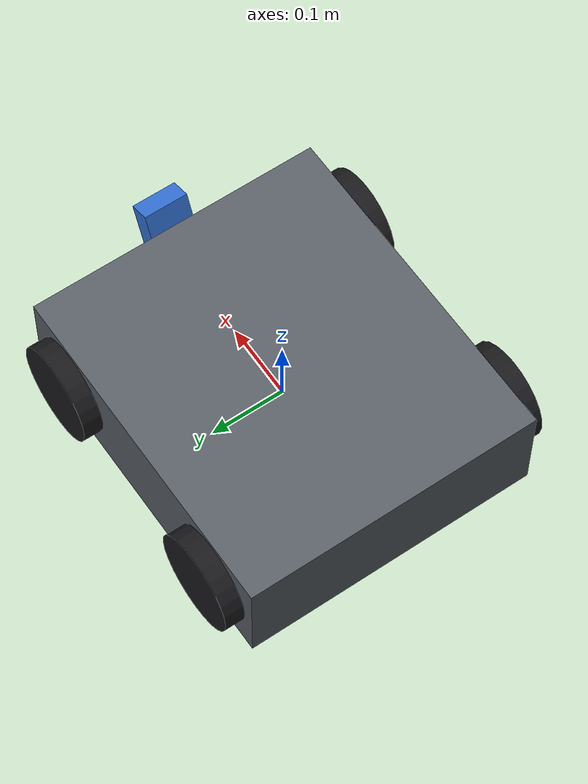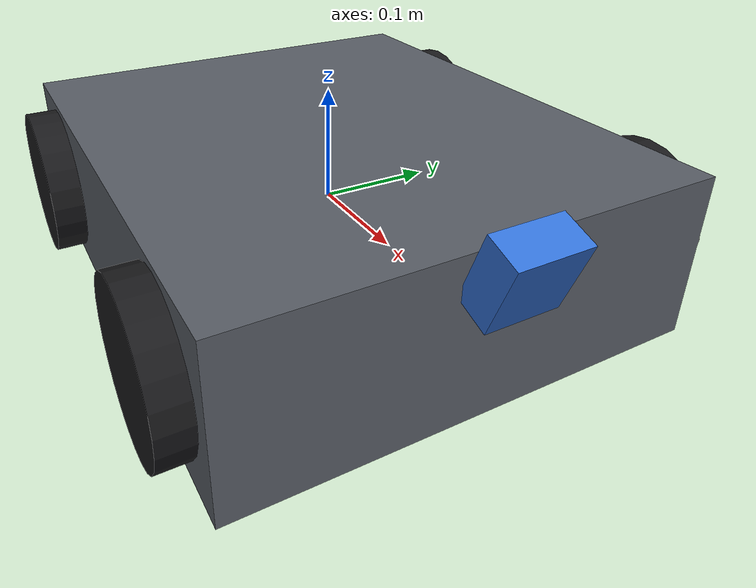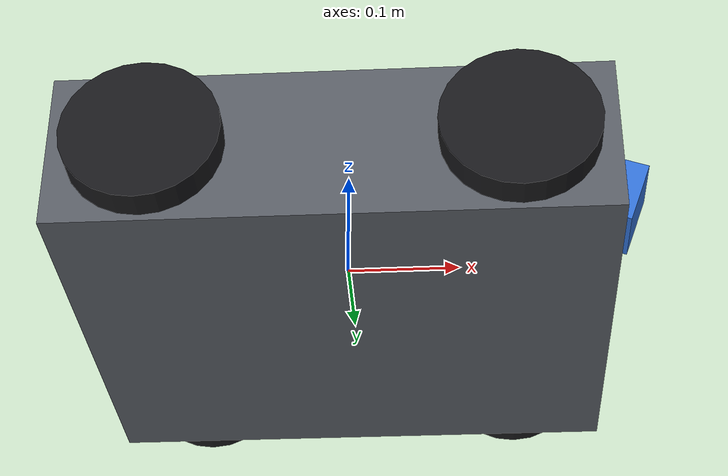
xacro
<?xml version="1.0"?>
<robot xmlns:xacro="http://www.ros.org/wiki/xacro" name="hwb_robot">

  <xacro:arg name="can_interface" default="can0"/>
  <xacro:arg name="use_ros2_control" default="false"/>

  <!-- ================= 全局参数 ================= -->
  <xacro:property name="wheel_radius"  value="0.065"/>
  <xacro:property name="wheel_width"   value="0.032"/>
  <xacro:property name="track_width"   value="0.42"/>
  <xacro:property name="wheel_base"    value="0.30"/>
  <xacro:property name="body_length"   value="0.46"/>
  <xacro:property name="body_width"    value="0.40"/>
  <xacro:property name="body_height"   value="0.14"/>
  <xacro:property name="body_z"        value="0.09"/>
  <xacro:property name="wheel_mass"    value="0.42"/>
  <xacro:property name="body_mass"     value="9.8"/>

  <!-- 惯性矩阵 -->
  <xacro:macro name="box_inertia" params="m x y z">
    <inertial>
      <mass value="${m}"/>
      <inertia ixx="${m*(y*y+z*z)/12.0}" ixy="0"
               ixz="0" iyy="${m*(x*x+z*z)/12.0}"
               iyz="0" izz="${m*(x*x+y*y)/12.0}"/>
    </inertial>
  </xacro:macro>

  <xacro:macro name="cyl_inertia" params="m r h">
    <inertial>
      <mass value="${m}"/>
      <inertia ixx="${m*(3.0*r*r+h*h)/12.0}" ixy="0" ixz="0"
               iyy="${m*(3.0*r*r+h*h)/12.0}" iyz="0"
               izz="${m*r*r/2.0}"/>
    </inertial>
  </xacro:macro>

  <!-- ================= 材质 ================= -->
  <material name="body_grey"><color rgba="0.35 0.37 0.40 1.0"/></material>
  <material name="wheel_black"><color rgba="0.10 0.10 0.11 1.0"/></material>
  <material name="cam_blue"><color rgba="0.20 0.45 0.85 1.0"/></material>
  <material name="pump_amber"><color rgba="0.90 0.62 0.10 1.0"/></material>

  <!-- ================= base_link ================= -->
  <link name="base_link">
    <visual>
      <origin xyz="0 0 0" rpy="0 0 0"/>
      <geometry><box size="${body_length} ${body_width} ${body_height}"/></geometry>
      <material name="body_grey"/>
    </visual>
    <collision>
      <origin xyz="0 0 0" rpy="0 0 0"/>
      <geometry><box size="${body_length} ${body_width} ${body_height}"/></geometry>
    </collision>
    <xacro:box_inertia m="${body_mass}" x="${body_length}" y="${body_width}" z="${body_height}"/>
  </link>

  <xacro:macro name="drive_wheel" params="idx name x_sign y_sign">
    <link name="wheel_${idx}_link">
      <visual>
        <origin xyz="0 0 0" rpy="1.5707963 0 0"/>
        <geometry><cylinder radius="${wheel_radius}" length="${wheel_width}"/></geometry>
        <material name="wheel_black"/>
      </visual>
      <collision>
        <origin xyz="0 0 0" rpy="1.5707963 0 0"/>
        <geometry><cylinder radius="${wheel_radius}" length="${wheel_width}"/></geometry>
      </collision>
      <xacro:cyl_inertia m="${wheel_mass}" r="${wheel_radius}" h="${wheel_width}"/>
    </link>

    <joint name="wheel_${idx}_joint" type="continuous">
      <parent link="base_link"/>
      <child  link="wheel_${idx}_link"/>
      <origin xyz="${x_sign * wheel_base / 2.0} ${y_sign * track_width / 2.0} 0"
              rpy="0 0 0"/>
      <axis xyz="0 1 0"/>
      <dynamics damping="0.02" friction="0.05"/>
      <!-- 电机实际能力：峰值 15A / 6A 额定，折算到轮上约 1.2 N·m 峰值。
           这里给的是 ROS 侧限幅，比硬件保护宽松一档，让硬件先跳闸。 -->
      <limit effort="1.5" velocity="60.0"/>
    </joint>
  </xacro:macro>

  <xacro:drive_wheel idx="0" name="front_left"  x_sign=" 1" y_sign=" 1"/>
  <xacro:drive_wheel idx="1" name="front_right" x_sign=" 1" y_sign="-1"/>
  <xacro:drive_wheel idx="2" name="rear_left"   x_sign="-1" y_sign=" 1"/>
  <xacro:drive_wheel idx="3" name="rear_right"  x_sign="-1" y_sign="-1"/>

  <!-- ================= 相机 ================= -->
  <link name="camera_link">
    <visual>
      <origin xyz="0 0 0" rpy="0 0 0"/>
      <geometry><box size="0.030 0.060 0.060"/></geometry>
      <material name="cam_blue"/>
    </visual>
    <xacro:box_inertia m="0.075" x="0.030" y="0.060" z="0.060"/>
  </link>

  <!-- 相机安装在车头前上方，向下俯视 20°，覆盖车体前方 0.35~3.0m -->
  <joint name="camera_joint" type="fixed">
    <parent link="base_link"/>
    <child  link="camera_link"/>
    <origin xyz="${body_length/2.0 + 0.02} 0 ${body_height/2.0 - 0.01}"
            rpy="0 0.34906585 0"/>
  </joint>

  <!-- 光学坐标系（REP-103：z 向前，x 向右，y 向下） -->
  <link name="camera_optical_frame"/>
  <joint name="camera_optical_joint" type="fixed">
    <parent link="camera_link"/>
    <child  link="camera_optical_frame"/>
    <origin xyz="0 0 0" rpy="-1.5707963 0 -1.5707963"/>
  </joint>

  <!-- ================= 气泵（作为固定配重，不参与运动学） ================= -->
  <link name="pump_link">
    <visual>
      <origin xyz="0 0 0" rpy="0 0 0"/>
      <geometry><box size="0.11 0.07 0.07"/></geometry>
      <material name="pump_amber"/>
    </visual>
    <xacro:box_inertia m="0.62" x="0.11" y="0.07" z="0.07"/>
  </link>
  <joint name="pump_joint" type="fixed">
    <parent link="base_link"/>
    <child  link="pump_link"/>
    <origin xyz="-${body_length/2.0 - 0.06} 0 0.02" rpy="0 0 0"/>
  </joint>

  <!-- ================= IMU（预留，暂未装） ================= -->
  <link name="imu_link"/>
  <joint name="imu_joint" type="fixed">
    <parent link="base_link"/>
    <child  link="imu_link"/>
    <origin xyz="0 0 ${body_height/2.0}" rpy="0 0 0"/>
  </joint>

  <!-- ================= ros2_control 硬件段 ================= -->
  <xacro:if value="$(arg use_ros2_control)">
    <ros2_control name="HwbSystem" type="system">
      <hardware>
        <plugin>hw_ros2_control/HwbSystem</plugin>
        <param name="can_interface">$(arg can_interface)</param>
        <param name="invert_direction">false</param>
        <param name="send_enable_on_activate">true</param>
        <param name="gear_ratio_joint_0">1.0</param>
        <param name="gear_ratio_joint_1">1.0</param>
        <param name="gear_ratio_joint_2">1.0</param>
        <param name="gear_ratio_joint_3">1.0</param>
        <param name="current_limit_joint_0">4.0</param>
        <param name="current_limit_joint_1">4.0</param>
        <param name="current_limit_joint_2">4.0</param>
        <param name="current_limit_joint_3">4.0</param>
      </hardware>

      <xacro:macro name="wheel_ifaces" params="idx">
        <joint name="wheel_${idx}_joint">
          <command_interface name="velocity"/>
          <command_interface name="position"/>
          <command_interface name="effort"/>
          <state_interface name="position"/>
          <state_interface name="velocity"/>
          <state_interface name="effort"/>
          <state_interface name="temperature"/>
        </joint>
      </xacro:macro>

      <xacro:wheel_ifaces idx="0"/>
      <xacro:wheel_ifaces idx="1"/>
      <xacro:wheel_ifaces idx="2"/>
      <xacro:wheel_ifaces idx="3"/>
    </ros2_control>
  </xacro:if>

</robot>
